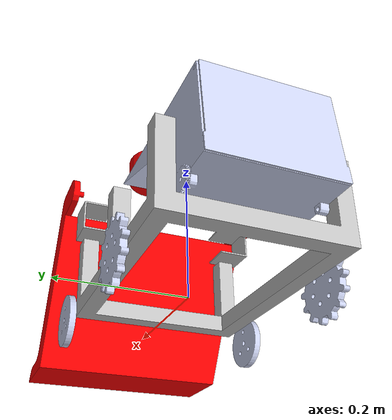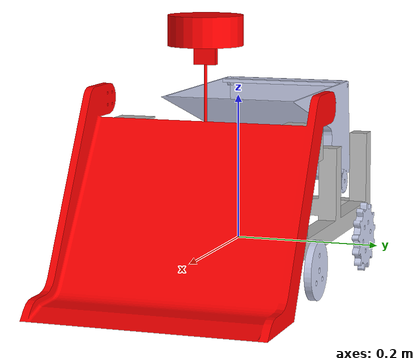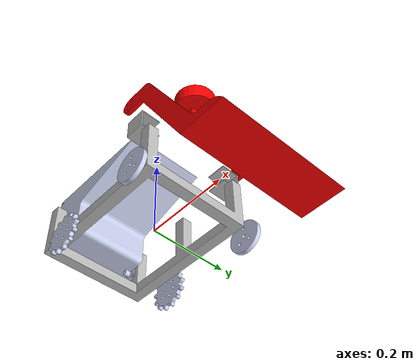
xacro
<?xml version="1.0" encoding="utf-8"?>
<robot xmlns:xacro="http://www.ros.org/wiki/xacro" name="LilT_Combined_URDF">

  <xacro:arg name="sim_mode" default="false"/>
  <xacro:include filename="ros2_control.xacro"/>

  <!-- COLORS -->
  <xacro:include filename="colors.xacro"/>

  <!-- LIDAR -->
  <xacro:include filename="lidar.xacro"/>

  <!-- CAMERA -->
  <xacro:include filename="camera.xacro"/>

  <link name="base_link" />
  <link name="base_footprint" />
  <joint name="base_joint" type="fixed">
    <parent link="base_link" />
    <child link="base_footprint" />
    <origin xyz="0 0 0" rpy="0 0 0" />
  </joint>

  <!-- Base Link and Joint -->
  <link name="Base">
    <inertial>
     <origin xyz="0.0071933 0.035942 -0.17341" rpy="0 0 0" />
      <mass value="1.0994" />
      <inertia ixx="0.0052099" ixy="-7.8944E-22" ixz="-4.9264E-20" iyy="0.0060071" iyz="3.293E-21"
        izz="0.0014684" />
    </inertial>
    <visual>
      <origin xyz="0 0 0" rpy="0 0 0" />
      <geometry>
        <mesh filename="file://$(find description)/meshes/Base.STL" />
      </geometry>
      <material name="teal">
        <color rgba="0.75294 0.75294 0.75294 1" />
      </material>
    </visual>
    <collision>
      <origin xyz="0 0 0" rpy="0 0 0" />
      <geometry>
        <mesh filename="file://$(find description)/meshes/Base.STL" />
      </geometry>
    </collision>
  </link>
  <joint name="Baseplate_joint" type="fixed">
    <origin xyz="0.136145 0 0" rpy="${pi/2} 0 ${pi/2}" />
    <parent link="base_link" />
    <child link="Base" />
  </joint>

  <gazebo reference="Base">
    <material>Gazebo/White</material>
  </gazebo>

  <!-- Frictionless model of actual driver wheel (does drive the bot in the sim) s-->
  <link name="DriverWheel">
    <inertial>
      <origin xyz="-0.030264 6.665E-05 1.2263E-10" rpy="0 0 0" />
      <mass value="0.5" />
      <inertia ixx="3.7938E-05" ixy="-6.4305E-20" ixz="-1.3428E-19" iyy="1.9406E-05"
        iyz="2.6768E-13" izz="1.9256E-05" />
    </inertial>
    <visual>
      <origin xyz="0 0 0" rpy="0 0 0" />
      <geometry>
        <mesh filename="file://$(find description)/meshes/DriverWheel.STL" />
      </geometry>
      <material name="green">
        <color rgba="0.79216 0.81961 0.93333 1" />
      </material>
    </visual>
    <collision>
      <origin xyz="0 0 0" rpy="0 0 0" />
      <geometry>
        <sphere radius="0.05"/>
      </geometry>
    </collision>
  </link>
  <joint name="DW_Joint" type="fixed"> <origin xyz="0.17907 -0.0127 -0.0127" rpy="0 0 0" />
    <parent link="Base" />
    <child link="DriverWheel" />
  </joint>

  <gazebo reference="DriverWheel">
    <material>Gazebo/Blue</material>
      <mu1 value="0.0"/> <!-- ARE WE ALLOWED TO DO THIS??? -->
      <mu2 value="0.0"/>
  </gazebo>

  <!-- Rear Caster Driver Wheel and Joint -->
  <link name="RearDriverWheel">
    <inertial>
      <origin xyz="-0.030264 6.665E-05 1.2263E-10" rpy="0 0 0" />
      <mass value="0.5" />
      <inertia ixx="3.7938E-05" ixy="-6.4305E-20" ixz="-1.3428E-19" iyy="1.9406E-05"
        iyz="2.6768E-13" izz="1.9256E-05" />
    </inertial>
    <!-- use sprocket for visual (it wont spin unfortunately) -->
    <visual>
      <origin xyz="-0.0397 0 0" rpy="0 0 0" />
      <geometry>
        <mesh filename="file://$(find description)/meshes/DriverSprocket.STL" />
      </geometry>
      <material name="blue">
        <color rgba="0.79216 0.81961 0.93333 1" />
      </material>
    </visual>
    <collision>
      <origin xyz="-0.030264 6.665E-05 1.2263E-10" rpy="0 0 0" />
      <geometry>
        <sphere radius="0.05"/>
      </geometry>
    </collision>
  </link>
  <joint name="RDW_Joint" type="fixed"> <origin xyz="0.17907 -0.0127 -0.25959" rpy="0 0 0" />
    <parent link="Base" />
    <child link="RearDriverWheel" />
  </joint>

  <gazebo reference="RearDriverWheel">
    <material>Gazebo/Pink</material>
      <mu1 value="0.0"/>
      <mu2 value="0.0"/>
  </gazebo>

  <!-- Invisible driver wheel that allows Terrence to turn accurately -->
  <link name="DriverSprocket">
    <inertial>
      <origin xyz="0.0097746 -3.5292E-09 -5.2457E-08" rpy="0 0 0" />
      <mass value="0.5" />
      <inertia ixx="5.3673E-05" ixy="-1.8152E-12" ixz="1.8049E-14" iyy="2.7245E-05"
        iyz="-1.9672E-11" izz="2.7245E-05" />
    </inertial>
    <collision>
      <origin xyz="0 0 0" rpy="0 0 0" />
      <geometry>
        <sphere radius="0.05"/>
      </geometry>
    </collision>
  </link>
  <joint name="DS_Joint" type="continuous">
    <origin xyz="0.14605 -0.0127 -0.136145" rpy="0 0 0" />
    <parent link="Base" />
    <child link="DriverSprocket" />
    <axis xyz="1 0 0" />
    <limit effort="10" velocity="10" />
  </joint>

  <gazebo reference="DriverSprocket">
    <material>Gazebo/Blue</material>
  </gazebo>

  <link name="PassWheel">
    <inertial>
      <origin xyz="0.020612 8.4006E-05 -0.00023239" rpy="0 0 0" />
      <mass value="0.5" />
      <inertia ixx="3.7938E-05" ixy="-6.4876E-20" ixz="-1.3466E-19" iyy="1.9406E-05"
        iyz="-3.2644E-10" izz="1.9256E-05" />
    </inertial>
    <visual>
      <origin xyz="0 0 0" rpy="0 0 0" />
      <geometry>
        <mesh filename="file://$(find description)/meshes/PassWheel.STL" />
      </geometry>
      <material name="purple">
        <color rgba="0.79216 0.81961 0.93333 1" />
      </material>
    </visual>
    <collision>
      <origin xyz="0 0 0" rpy="0 0 0" />
      <geometry>
        <sphere radius="0.05"/>
      </geometry>
    </collision>
  </link>
  <joint name="PW_Joint" type="fixed"> <origin xyz="-0.17907 -0.0127 -0.0127" rpy="0 0 0" />
    <parent link="Base" />
    <child link="PassWheel" />
  </joint>

  <gazebo reference="PassWheel">
    <material>Gazebo/Blue</material>
      <mu1 value="0.0"/>
      <mu2 value="0.0"/>
  </gazebo>

  <!-- rear pass wheel -->
  <link name="RearPassWheel">
    <inertial>
      <origin xyz="0.020612 8.4006E-05 -0.00023239" rpy="0 0 0" />
      <mass value="0.5" />
      <inertia ixx="3.7938E-05" ixy="-6.4876E-20" ixz="-1.3466E-19" iyy="1.9406E-05"
        iyz="-3.2644E-10" izz="1.9256E-05" />
    </inertial>
    <!-- sprocket visual - again, it wont move -->
    <visual>
      <origin xyz="0.0397 0 0" rpy="0 0 0" />
      <geometry>
        <mesh filename="file://$(find description)/meshes/PassSprocket.STL" />
      </geometry>
      <material name="gray">
        <color rgba="0.79216 0.81961 0.93333 1" />
      </material>
    </visual>
    <collision>
      <origin xyz="0.020612 8.4006E-05 -0.00023239" rpy="0 0 0" />
      <geometry>
        <sphere radius="0.05"/>
      </geometry>
    </collision>
  </link>
  <joint name="RPW_Joint" type="fixed"> <origin xyz="-0.17907 -0.0127 -0.25959" rpy="0 0 0" />
    <parent link="Base" />
    <child link="RearPassWheel" />
  </joint>

  <gazebo reference="RearPassWheel">
    <material>Gazebo/White</material>
      <mu1 value="0.0"/>
      <mu2 value="0.0"/>
  </gazebo>

  <link name="PassSprocket">
    <inertial>
      <origin xyz="-0.0056813 -3.6211E-09 -5.2434E-08" rpy="0 0 0" />
      <mass value="0.5" />
      <inertia ixx="5.3673E-05" ixy="-1.8152E-12" ixz="2.2008E-14" iyy="2.7245E-05"
        iyz="-2.0018E-11" izz="2.7245E-05" />
    </inertial>
    <collision>
      <origin xyz="0 0 0" rpy="0 0 0" />
      <geometry>
        <sphere radius="0.05"/>
      </geometry>
    </collision>
  </link>
  <joint name="PS_Joint" type="continuous">
    <origin xyz="-0.14605 -0.0127 -0.136145" rpy="0 0 0" />
    <parent link="Base" />
    <child link="PassSprocket" />
    <axis xyz="1 0 0" />
    <limit effort="10" velocity="10" />
  </joint>

  <gazebo reference="PassSprocket">
    <material>Gazebo/Blue</material>
  </gazebo>

  <link name="Loader">
    <inertial>
      <origin xyz="-0.14124 -0.17161 0.14187" rpy="0 0 0" />
      <mass value="1.4896" />
      <inertia ixx="0.011793" ixy="-2.9875E-05" ixz="2.4692E-05" iyy="0.020991" iyz="0.0052507"
        izz="0.024104" />
    </inertial>
    <visual>
      <origin xyz="0 0 0" rpy="0 0 0" />
      <geometry>
        <mesh filename="file://$(find description)/meshes/Loader.STL" />
      </geometry>
      <material name="yellow">
        <color rgba="1 0 0 1" />
      </material>
    </visual>
    <collision>
      <origin xyz="0 0 0" rpy="0 0 0" />
      <geometry>
        <mesh filename="file://$(find description)/meshes/Loader.STL" />
      </geometry>
    </collision>
  </link>
  <joint name="LoaderJoint" type="revolute">
    <origin xyz="0.14135 0.20066 -0.03683" rpy="0 0 0" />
    <parent link="Base" />
    <child link="Loader" />
    <axis xyz="-1 0 0" />
    <limit lower="0" upper="1.571" effort="10" velocity="0.7854" />
  </joint>

  <gazebo reference="Loader">
    <material>Gazebo/Red</material>
    <mu1 value="0.001"/>
    <mu2 value="0.001"/>
  </gazebo>

  <link name="Hopper">
    <inertial>
      <origin xyz="-0.079042 0.080085 0.065194" rpy="0 0 0" />
      <mass value="0.29528" />
      <inertia ixx="0.002494" ixy="3.9471E-05" ixz="3.2132E-05" iyy="0.0032471" iyz="-0.00071427"
        izz="0.0022122" />
    </inertial>
    <visual>
      <origin xyz="0 0 0" rpy="0 0 0" />
      <geometry>
        <mesh filename="file://$(find description)/meshes/Hopper.STL" />
      </geometry>
      <material name="pink">
        <color rgba="0.79216 0.81961 0.93333 1" />
      </material>
    </visual>
    <collision>
      <origin xyz="0 0 0" rpy="0 0 0" />
      <geometry>
        <mesh filename="file://$(find description)/meshes/Hopper.STL" />
      </geometry>
    </collision>
  </link>
  <joint name="HopperJoint" type="revolute">
    <origin xyz="0.076774 0.05207 -0.3429" rpy="0 0 0" />
    <parent link="Base" />
    <child link="Hopper" />
    <axis xyz="-1 0 0" />
    <limit lower="0" upper="0.785" effort="10" velocity="0.3927" />
  </joint>

  <gazebo reference="Hopper">
    <material>Gazebo/White</material>
  </gazebo>

  <link name="Door">
    <inertial>
      <origin xyz="-0.09525 -0.062153 -0.013449" rpy="0 0 0" />
      <mass value="0.067736" />
      <inertia ixx="0.00011563" ixy="1.0111E-19" ixz="1.4928E-21" iyy="0.00020595" iyz="-1.1678E-05"
        izz="0.00031894" />
    </inertial>
    <visual>
      <origin xyz="0 0 0" rpy="0 0 0" />
      <geometry>
        <mesh filename="file://$(find description)/meshes/Door.STL" />
      </geometry>
      <material name="silver">
        <color rgba="0.79216 0.81961 0.93333 1" />
      </material>
    </visual>
    <collision>
      <origin xyz="0 0 0" rpy="0 0 0" />
      <geometry>
        <mesh filename="file://$(find description)/meshes/Door.STL" />
      </geometry>
    </collision>
  </link>
  <joint name="DoorJoint" type="revolute">
    <origin xyz="0.014539 0.1397 -0.033006" rpy="0 0 0" />
    <parent link="Hopper" />
    <child link="Door" />
    <axis xyz="1 0 0" />
    <limit lower="0" upper="0.3927" effort="0" velocity="5.0" />
    <dynamics damping="0.05" friction="0.01" />
  </joint>

  <gazebo reference="Door">
    <material>Gazebo/White</material>
  </gazebo>

  <!-- Mimic joints don't work in New Gazebo because it's dumb and stupid -->
  <!-- Mimic joints -->

</robot>

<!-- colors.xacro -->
<robot xmlns:xacro="http://www.ros.org/wiki/xacro">

  <!-- Misc. colors for making different parts easier to identify -->
  <material name="red">
    <color rgba="1 0 0 1"/>
  </material>

  <material name="green">
    <color rgba="0 1 0 1"/>
  </material>

  <material name="blue">
    <color rgba="0 0 1 1"/>
  </material>

  <material name="yellow">
    <color rgba="1 1 0 1"/>
  </material>

  <material name="cyan">
    <color rgba="0 1 1 1"/>
  </material>

  <material name="magenta">
    <color rgba="1 0 1 1"/>
  </material>

  <!-- Neutrals -->
  <material name="white">
    <color rgba="1 1 1 1"/>
  </material>

  <material name="black">
    <color rgba="0 0 0 1"/>
  </material>

  <material name="gray">
    <color rgba="0.5 0.5 0.5 1"/>
  </material>

  <material name="dark_gray">
    <color rgba="0.25 0.25 0.25 1"/>
  </material>

  <!-- Extra fun colors -->
  <material name="orange">
    <color rgba="1 0.5 0 1"/>
  </material>

  <material name="purple">
    <color rgba="0.5 0 0.5 1"/>
  </material>

  <material name="pink">
    <color rgba="1 0.75 0.8 1"/>
  </material>

  <material name="lime">
    <color rgba="0.75 1 0 1"/>
  </material>

  <material name="teal">
    <color rgba="0 0.5 0.5 1"/>
  </material>

  <material name="navy">
    <color rgba="0 0 0.5 1"/>
  </material>

  <material name="brown">
    <color rgba="0.6 0.3 0.1 1"/>
  </material>

  <material name="gold">
    <color rgba="1 0.84 0 1"/>
  </material>

  <material name="silver">
    <color rgba="0.75 0.75 0.75 1"/>
  </material>

  <material name="maroon">
    <color rgba="0.5 0 0 1"/>
  </material>

</robot>

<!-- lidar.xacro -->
<robot xmlns:xacro="http://www.ros.org/wiki/xacro">

    <!-- LIDAR is represented by a small cylinder floating above the robot. -->

    <!-- Currently using arbitrary values for model, change as needed -->
    <joint name="lidar_joint" type="fixed">
        <parent link="Base"/>
        <child link="laser_frame"/>
        <origin xyz="0 0.3 0" rpy="${pi/2} 0 0"/>
    </joint>

    <link name="laser_frame">
        <visual>
            <geometry>
                <cylinder radius="0.05" length="0.04"/>
            </geometry>
            <material name="red"/>
        </visual>
        <collision>
            <geometry>
                <cylinder radius="0.05" length="0.04"/>
            </geometry>
        </collision>
        <inertial>
            <origin xyz="0 0 0" rpy="0 0 0"/>
            <mass value="0.1" />
            <inertia ixx="${(1/12) * 0.1 * (3*0.05*0.05 + 0.04*0.04)}" ixy="0.0" ixz="0.0"
                    iyy="${(1/12) * 0.1 * (3*0.05*0.05 + 0.04*0.04)}" iyz="0.0"
                    izz="${(1/2) * 0.1 * (0.05*0.05)}" />
        </inertial>
    </link>

    <gazebo reference="laser_frame">
        <material>Gazebo/Red</material>
        <sensor name="laser" type="gpu_lidar">
            <pose> 0 0 0 0 0 0 </pose>
            <visualize>true</visualize>
            <update_rate>10</update_rate>
            <lidar>
                <scan>
                    <horizontal>
                        <samples>360</samples>
                        <min_angle>-3.14</min_angle>
                        <max_angle>3.14</max_angle>
                    </horizontal>
                </scan>
                <range>
                    <min>0.3</min>
                    <max>12</max>
                </range>
            </lidar>
            <topic>scan</topic>
            <gz_frame_id>laser_frame</gz_frame_id>
        </sensor>
    </gazebo>
</robot>

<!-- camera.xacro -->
<robot xmlns:xacro="http://www.ros.org/wiki/xacro" >
    <joint name="camera_joint" type="fixed">
        <parent link="Base"/>
        <child link="camera_link"/>
        <origin xyz="0 0.27 0" rpy="-${pi/2} -${pi/2} 0"/>
    </joint>

    <!-- The camera is represented by a simple box and cylinder floating above the bot-->

    <link name="camera_link">
        <visual>
            <geometry>
                <box size="0.010 0.03 0.03"/>
            </geometry>
            <material name="red"/>
        </visual>
        <visual>
            <origin xyz="0 0 -0.05"/>
            <geometry>
                <cylinder radius="0.002" length="0.1"/>
            </geometry>
            <material name="red"/>
        </visual>
    </link>

    <joint name="camera_optical_joint" type="fixed">
        <parent link="camera_link"/>
        <child link="camera_link_optical"/>
        <origin xyz="0.1 0 0" rpy="${-pi/2} 0 ${-pi/2}"/>
    </joint>

    <link name="camera_link_optical"></link>

    <gazebo reference="camera_link">
        <material>Gazebo/Red</material>
        <sensor name="rgbd_camera" type="rgbd_camera">
            <pose> 0 0 0 0 0 0 </pose>
            <visualize>true</visualize>
            <update_rate>10</update_rate>
            <camera>
                <camera_info_topic>camera/camera_info</camera_info_topic>
                <horizontal_fov>1.089</horizontal_fov>
                <image>
                    <format>R8G8B8</format>
                    <width>640</width>
                    <height>480</height>
                </image>
                <clip>
                    <near>0.05</near>
                    <far>8.0</far>
                </clip>
            </camera>
            <topic>camera</topic>
            <gz_frame_id>camera_link_optical</gz_frame_id>
        </sensor>
    </gazebo>
</robot>
